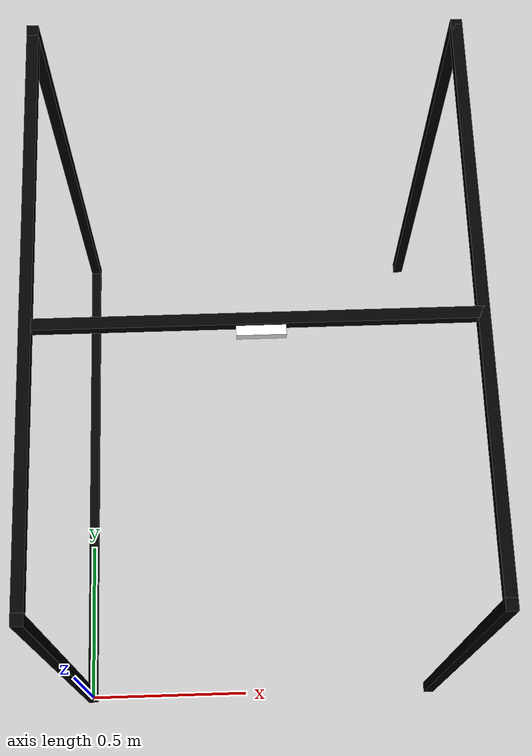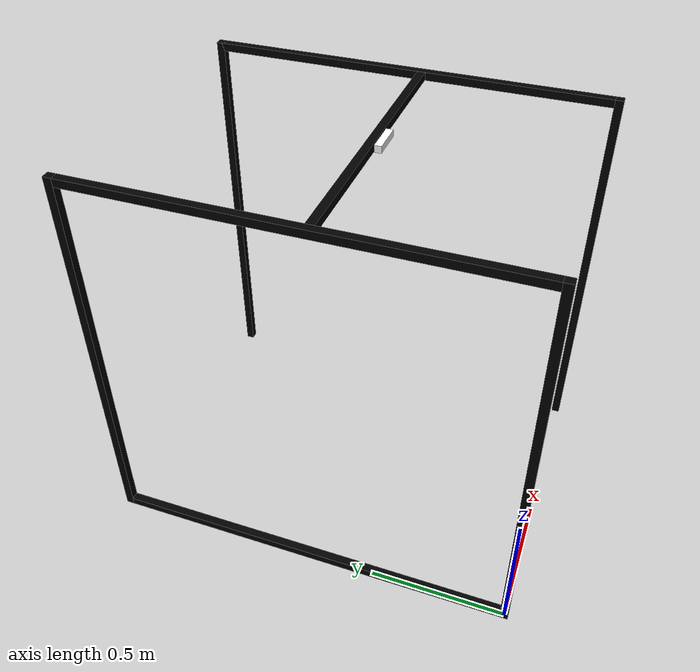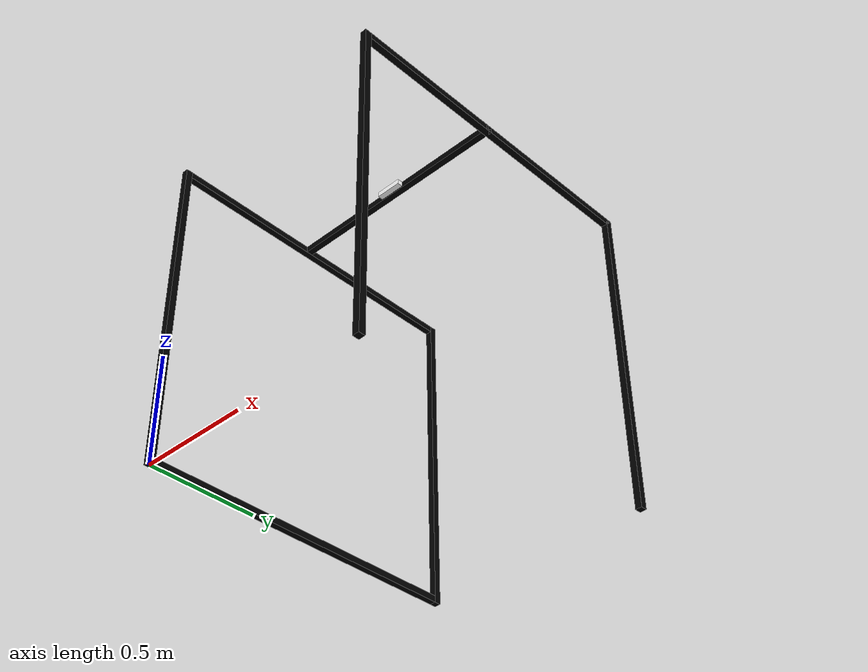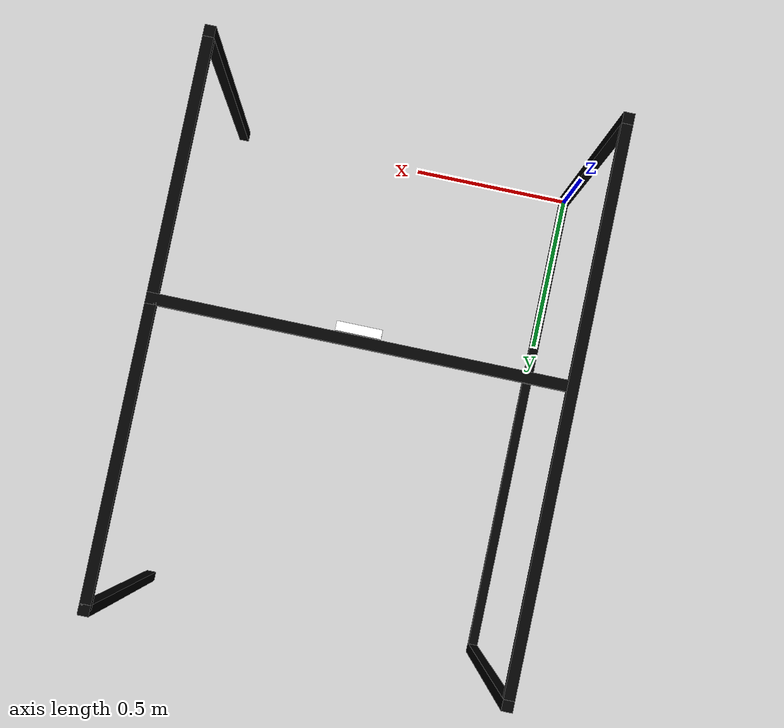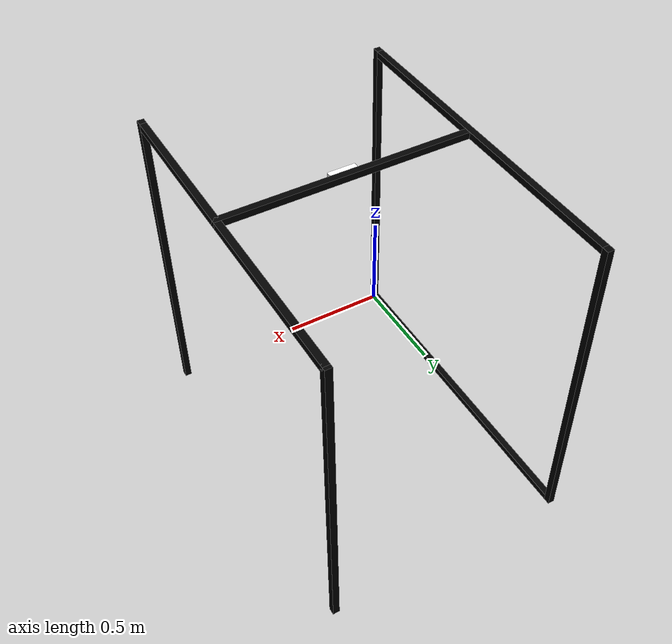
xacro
<?xml version="1.0"?>
<robot xmlns:xacro="http://www.ros.org/wiki/xacro"  name="blue_tray">

  <xacro:include filename="robot_frame.xacro"/>
  <xacro:include filename="gazebo_plugin.xacro"/>
  <xacro:include filename="depth_camera.xacro" />

</robot>

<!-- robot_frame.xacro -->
<robot xmlns:xacro="http://www.ros.org/wiki/xacro">

  <!-- Material Definition -->
  <material name="yellow">
    <color rgba="1 1 0 1"/>
  </material>

  <material name="black">
    <color rgba="0 0 0 1"/>
  </material>

  <link name="world">
  </link>

  <link name="base_link">
    <origin xyz="0 0 0" rpy="0 0 0"/>
    <visual>
      <geometry>
        <box size="0.03 1.5 0.03"/>
      </geometry>
      <material name="black"/>
    </visual>
    <collision>
      <geometry>
        <box size="0.03 1.5 0.03"/>
      </geometry>
    </collision>
    <inertial>
      <mass value="0.5"/>
      <origin xyz="0 0 0" rpy="0 0 0"/>
      <inertia ixx="0.0937875" ixy="0" ixz="0" iyy="0.000075" iyz="0" izz="0.0937875"/>
    </inertial>
  </link>

  <link name="link1">
    <origin xyz="0 0 0" rpy="0 0 0"/>
    <visual>
      <geometry>
        <box size="0.03 0.03 1.5"/>
      </geometry>
      <material name="black"/>
    </visual>
    <collision>
      <geometry>
        <box size="0.03 0.03 1.5"/>
      </geometry>
    </collision>
    <inertial>
      <mass value="0.5"/>
      <origin rpy="0 0 0" xyz="0 0 0"/>
      <inertia ixx="0.0937875" ixy="0" ixz="0" iyy="0.0937875" iyz="0" izz="0.000075"/>
    </inertial>
  </link>

  <link name="link2">
    <origin xyz="0 0 0" rpy="0 0 0"/>
    <visual>
      <geometry>
        <box size="0.03 0.03 1.5"/>
      </geometry>
      <material name="black"/>
    </visual>
    <collision>
      <geometry>
        <box size="0.03 0.03 1.5"/>
      </geometry>
    </collision>
    <inertial>
      <mass value="0.5"/>
      <origin rpy="0 0 0" xyz="0 0 0"/>
      <inertia ixx="0.0937875" ixy="0" ixz="0" iyy="0.0937875" iyz="0" izz="0.000075"/>
    </inertial>
  </link>

  <link name="link3">
    <origin xyz="0 0 0" rpy="0 0 0"/>
    <visual>
      <geometry>
        <box size="0.03 0.03 1.5"/>
      </geometry>
      <material name="black"/>
    </visual>
    <collision>
      <geometry>
        <box size="0.03 0.03 1.5"/>
      </geometry>
    </collision>
    <inertial>
      <mass value="0.5"/>
      <origin rpy="0 0 0" xyz="0 0 0"/>
      <inertia ixx="0.0937875" ixy="0" ixz="0" iyy="0.0937875" iyz="0" izz="0.000075"/>
    </inertial>
  </link>

  <link name="link4">
    <origin xyz="0 0 0" rpy="0 0 0"/>
    <visual>
      <geometry>
        <box size="0.03 0.03 1.5"/>
      </geometry>
      <material name="black"/>
    </visual>
    <collision>
      <geometry>
        <box size="0.03 0.03 1.5"/>
      </geometry>
    </collision>
    <inertial>
      <mass value="0.5"/>
      <origin rpy="0 0 0" xyz="0 0 0"/>
      <inertia ixx="0.0937875" ixy="0" ixz="0" iyy="0.0937875" iyz="0" izz="0.000075"/>
    </inertial>
  </link>

  <link name="link5">
    <origin xyz="0 0 0" rpy="0 0 0"/>
    <visual>
      <geometry>
        <box size="0.03 1.5 0.03"/>
      </geometry>
      <material name="black"/>
    </visual>
    <collision>
      <geometry>
        <box size="0.03 1.5 0.03"/>
      </geometry>
    </collision>
    <inertial>
      <mass value="0.5"/>
      <origin rpy="0 0 0" xyz="0 0 0"/>
      <inertia ixx="0.000075" ixy="0" ixz="0" iyy="0.0937875" iyz="0" izz="0.0937875"/>
    </inertial>
  </link>

  <link name="link6">
    <origin xyz="0 0 0" rpy="0 0 0"/>
    <visual>
      <geometry>
        <box size="0.03 1.5 0.03"/>
      </geometry>
      <material name="black"/>
    </visual>
    <collision>
      <geometry>
        <box size="0.03 1.5 0.03"/>
      </geometry>
    </collision>
    <inertial>
      <mass value="0.5"/>
      <origin rpy="0 0 0" xyz="0 0 0"/>
      <inertia ixx="0.000075" ixy="0" ixz="0" iyy="0.0937875" iyz="0" izz="0.0937875"/>
    </inertial>
  </link>

  <link name="link7">
    <origin xyz="0 0 0" rpy="0 0 0"/>
    <visual>
      <geometry>
        <box size="1.1 0.03 0.03"/>
      </geometry>
      <material name="black"/>
    </visual>
    <collision>
      <geometry>
        <box size="0.03 1.5 0.03"/>
      </geometry>
    </collision>
    <inertial>
      <mass value="0.5"/>
      <origin rpy="0 0 0" xyz="0 0 0"/>
      <inertia ixx="0.05045416667" ixy="0" ixz="0" iyy="0.05045416667" iyz="0" izz="0.000075"/>
    </inertial>
  </link>

  <!-- Joints  -->
  <joint name="joint_0" type="fixed">
      <origin xyz="0 0.765 0.015" rpy="0 0 0"/>
      <parent link="world"/>
      <child link="base_link"/>
  </joint>

  <joint name="joint_1" type="fixed">
      <origin xyz="0 -0.765 0.735" rpy="0 0 0"/>
      <parent link="base_link"/>
      <child link="link1"/>
  </joint>

  <joint name="joint_2" type="fixed">
      <origin xyz="0 0.765 0.735" rpy="0 0 0"/>
      <parent link="base_link"/>
      <child link="link2"/>
  </joint>

  <joint name="joint_3" type="fixed">
      <origin xyz="1.1 0 0.75" rpy="0 0 0"/>
      <parent link="world"/>
      <child link="link3"/>
  </joint>

  <joint name="joint_4" type="fixed">
      <origin xyz="1.1 1.515 0.75" rpy="0 0 0"/>
      <parent link="world"/>
      <child link="link4"/>
  </joint>

  <joint name="joint_5" type="fixed">
      <origin xyz="0 0.765 0.735" rpy="0 0 0"/>
      <parent link="link1"/>
      <child link="link5"/>
  </joint>

  <joint name="joint_6" type="fixed">
      <origin xyz="0 0.765 0.735" rpy="0 0 0"/>
      <parent link="link3"/>
      <child link="link6"/>
  </joint>

  <joint name="joint_7" type="fixed">
      <origin xyz="0.565 -0.06 0" rpy="0 0 0"/>
      <parent link="link5"/>
      <child link="link7"/>
  </joint>

</robot>

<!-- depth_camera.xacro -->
<robot xmlns:xacro="http://www.ros.org/wiki/xacro" >

    <material name="white">
        <color rgba="1 1 1 1"/>
    </material>

    <material name="red">
        <color rgba="1 0 0 1"/>
    </material>

    <link name="camera_link">
        <visual>
            <geometry>
                <box size="0.025 0.12 0.025"/>
            </geometry>
            <material name="white"/>
        </visual>
    </link>

    <link name="camera_link_optical"></link>

    <joint name="camera_joint" type="fixed">
        <parent link="link7"/>
        <child link="camera_link"/>
        <origin xyz="0 -0.03 0" rpy="0 ${+pi/2} ${-pi/2}"/>
    </joint>

    <joint name="camera_optical_joint" type="fixed">
        <parent link="camera_link"/>
        <child link="camera_link_optical"/>
        <origin xyz="0 0.0125 -0.025" rpy="${-pi/2} ${pi} ${-pi/2}"/>
    </joint>

    <gazebo reference="camera_link">
        <material>Gazebo/Grey</material>

        <sensor name="camera" type="depth">
            <pose> 0 0 0 0 0 0 </pose>
            <visualize>true</visualize>
            <update_rate>30</update_rate>
            <camera>
                <horizontal_fov>1.4</horizontal_fov>
                <image>
                    <format>B8G8R8</format>
                    <width>640</width>
                    <height>480</height>
                </image>
                <clip>
                    <near>0.05</near>
                    <far>8.0</far>
                </clip>
            </camera>
            <plugin name="camera_controller" filename="libgazebo_ros_camera.so">
                <frame_name>camera_link_optical</frame_name>
            </plugin>
        </sensor>
    </gazebo>

</robot>
